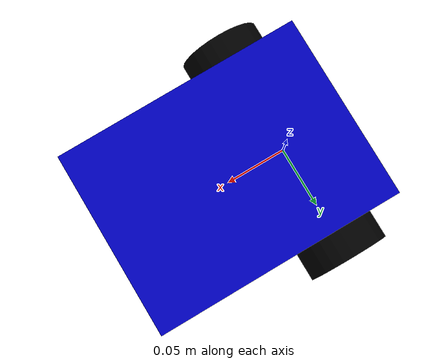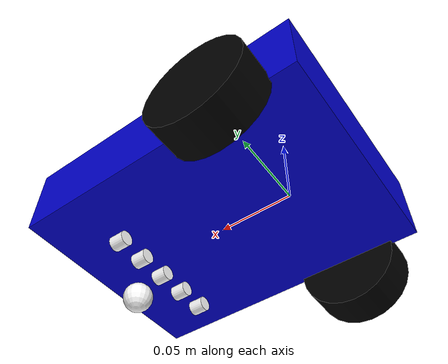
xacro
<?xml version="1.0"?>
<robot xmlns:xacro="http://www.ros.org/wiki/xacro" name="line_follower_robot">

    <!-- Constants -->
    <xacro:property name="chassis_length" value="0.2"/>
    <xacro:property name="chassis_width" value="0.15"/>
    <xacro:property name="chassis_height" value="0.05"/>
    <xacro:property name="wheel_radius" value="0.033"/>
    <xacro:property name="wheel_width" value="0.026"/>
    <xacro:property name="wheel_separation" value="0.17"/>
    <xacro:property name="caster_radius" value="0.01"/>

    <!-- Materials -->
    <material name="blue">
        <color rgba="0 0 0.8 1"/>
    </material>
    <material name="black">
        <color rgba="0 0 0 1"/>
    </material>
    <material name="white">
        <color rgba="1 1 1 1"/>
    </material>

    <!-- Base Link -->
    <link name="base_link">
    </link>

    <!-- Chassis -->
    <joint name="chassis_joint" type="fixed">
        <parent link="base_link"/>
        <child link="chassis"/>
        <origin xyz="-0.05 0 0"/>
    </joint>

    <link name="chassis">
        <visual>
            <origin xyz="0.1 0 0.025"/>
            <geometry>
                <box size="${chassis_length} ${chassis_width} ${chassis_height}"/>
            </geometry>
            <material name="blue"/>
        </visual>
        <collision>
            <origin xyz="0.1 0 0.025"/>
            <geometry>
                <box size="${chassis_length} ${chassis_width} ${chassis_height}"/>
            </geometry>
        </collision>
        <inertial>
            <origin xyz="0.1 0 0.025" rpy="0 0 0"/>
            <mass value="0.5"/>
            <inertia ixx="0.001" ixy="0" ixz="0" iyy="0.001" iyz="0" izz="0.001"/>
        </inertial>
    </link>

    <!-- Left Wheel -->
    <joint name="left_wheel_joint" type="continuous">
        <parent link="base_link"/>
        <child link="left_wheel"/>
        <origin xyz="0 ${wheel_separation/2} 0" rpy="${pi/2} 0 0"/>
        <axis xyz="0 0 -1"/>
    </joint>

    <link name="left_wheel">
        <visual>
            <geometry>
                <cylinder radius="${wheel_radius}" length="${wheel_width}"/>
            </geometry>
            <material name="black"/>
        </visual>
        <collision>
            <geometry>
                <cylinder radius="${wheel_radius}" length="${wheel_width}"/>
            </geometry>
        </collision>
        <inertial>
            <mass value="0.1"/>
            <inertia ixx="0.0001" ixy="0" ixz="0" iyy="0.0001" iyz="0" izz="0.0001"/>
        </inertial>
    </link>

    <!-- Right Wheel -->
    <joint name="right_wheel_joint" type="continuous">
        <parent link="base_link"/>
        <child link="right_wheel"/>
        <origin xyz="0 -${wheel_separation/2} 0" rpy="${pi/2} 0 0"/>
        <axis xyz="0 0 -1"/>
    </joint>

    <link name="right_wheel">
        <visual>
            <geometry>
                <cylinder radius="${wheel_radius}" length="${wheel_width}"/>
            </geometry>
            <material name="black"/>
        </visual>
        <collision>
            <geometry>
                <cylinder radius="${wheel_radius}" length="${wheel_width}"/>
            </geometry>
        </collision>
        <inertial>
            <mass value="0.1"/>
            <inertia ixx="0.0001" ixy="0" ixz="0" iyy="0.0001" iyz="0" izz="0.0001"/>
        </inertial>
    </link>

    <!-- Caster Wheel -->
    <joint name="caster_wheel_joint" type="fixed">
        <parent link="chassis"/>
        <child link="caster_wheel"/>
        <origin xyz="0.17 0 -0.022"/>
    </joint>

    <link name="caster_wheel">
        <visual>
            <geometry>
                <sphere radius="${caster_radius}"/>
            </geometry>
            <material name="white"/>
        </visual>
        <collision>
            <geometry>
                <sphere radius="${caster_radius}"/>
            </geometry>
        </collision>
        <inertial>
            <mass value="0.05"/>
            <inertia ixx="0.00001" ixy="0" ixz="0" iyy="0.00001" iyz="0" izz="0.00001"/>
        </inertial>
    </link>

    <!-- Gazebo Materials -->
    <gazebo reference="chassis">
        <material>Gazebo/Blue</material>
    </gazebo>
    <gazebo reference="left_wheel">
        <material>Gazebo/Black</material>
    </gazebo>
    <gazebo reference="right_wheel">
        <material>Gazebo/Black</material>
    </gazebo>
    <gazebo reference="caster_wheel">
        <material>Gazebo/White</material>
        <mu1 value="0.001"/>
        <mu2 value="0.001"/>
    </gazebo>

    <!-- Gazebo Differential Drive Plugin -->
    <gazebo>
        <plugin name="diff_drive" filename="libgazebo_ros_diff_drive.so">
            <!-- Wheel Information -->
            <left_joint>left_wheel_joint</left_joint>
            <right_joint>right_wheel_joint</right_joint>
            <wheel_separation>${wheel_separation}</wheel_separation>
            <wheel_diameter>${2 * wheel_radius}</wheel_diameter>

            <!-- Limits -->
            <max_wheel_torque>50</max_wheel_torque>
            <max_wheel_acceleration>10.0</max_wheel_acceleration>

            <!-- Output -->
            <odometry_frame>odom</odometry_frame>
            <robot_base_frame>base_link</robot_base_frame>
            <publish_odom>false</publish_odom>
            <publish_odom_tf>false</publish_odom_tf>
            <publish_wheel_tf>true</publish_wheel_tf>
            <publish_wheel_joint_state>true</publish_wheel_joint_state>
        </plugin>
    </gazebo>

    <!-- Line Sensors -->
    <xacro:macro name="line_sensor" params="name x y">
        <joint name="${name}_joint" type="fixed">
            <parent link="chassis"/>
            <child link="${name}_link"/>
            <origin xyz="${x} ${y} -0.013" rpy="0 ${pi/2} 0"/>
        </joint>
        <link name="${name}_link">
            <visual>
                <geometry>
                    <cylinder radius="0.005" length="0.01"/>
                </geometry>
                <material name="white"/>
            </visual>
        </link>
        <gazebo reference="${name}_link">
            <sensor name="${name}" type="ray">
                <pose>0 0 0 0 0 0</pose>
                <visualize>true</visualize>
                <update_rate>20</update_rate>
                <ray>
                    <scan>
                        <horizontal>
                            <samples>1</samples>
                            <resolution>1</resolution>
                            <min_angle>0</min_angle>
                            <max_angle>0</max_angle>
                        </horizontal>
                    </scan>
                    <range>
                        <min>0.005</min>
                        <max>0.05</max>
                        <resolution>0.001</resolution>
                    </range>
                </ray>
                <plugin name="${name}_plugin" filename="libgazebo_ros_ray_sensor.so">
                    <ros>
                        <remapping>~/out:=${name}</remapping>
                    </ros>
                    <output_type>sensor_msgs/LaserScan</output_type>
                    <radiation_type>infrared</radiation_type>
                    <frame_name>${name}_link</frame_name>
                </plugin>
            </sensor>
        </gazebo>
    </xacro:macro>

    <xacro:line_sensor name="sensor_l2" x="0.15" y="0.04"/>
    <xacro:line_sensor name="sensor_l1" x="0.15" y="0.02"/>
    <xacro:line_sensor name="sensor_mid" x="0.15" y="0.0"/>
    <xacro:line_sensor name="sensor_r1" x="0.15" y="-0.02"/>
    <xacro:line_sensor name="sensor_r2" x="0.15" y="-0.04"/>

</robot>
